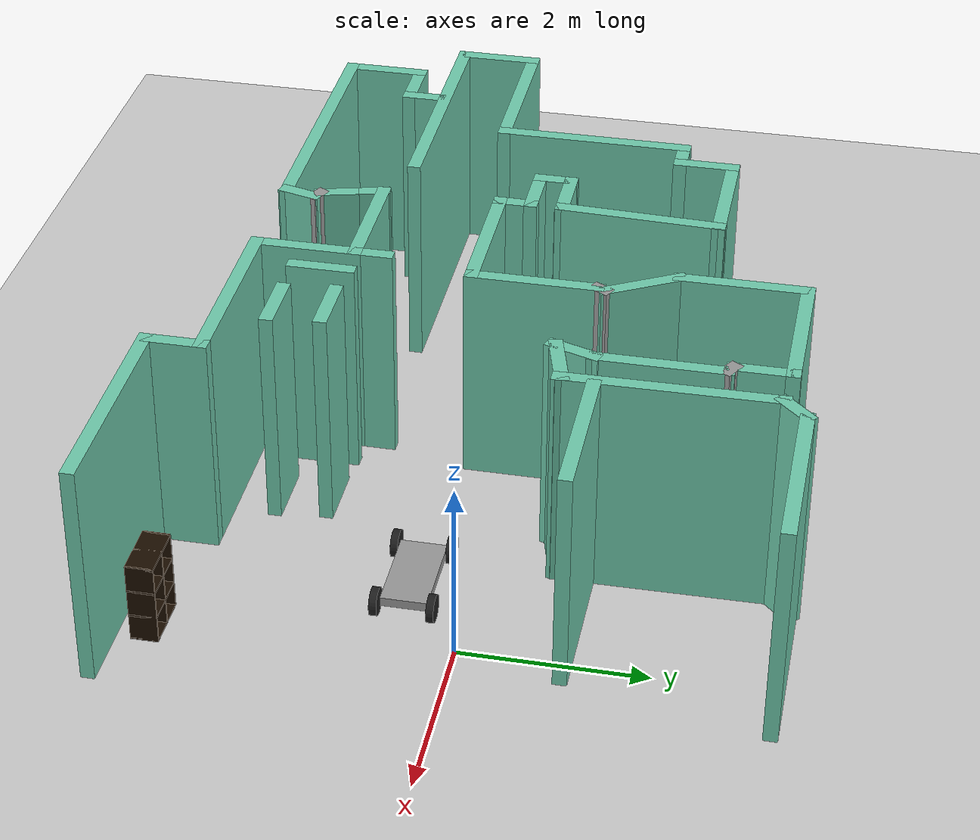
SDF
<sdf version="1.6">
 <world name="default">
  <model name="ground_plane">
   <static>1</static>
   <link name="link">
    <collision name="collision">
     <geometry><plane><normal>0 0 1</normal><size>100 100</size></plane></geometry>
     <surface>
      <contact><collide_bitmask>65535</collide_bitmask></contact>
      <friction><ode><mu>100</mu><mu2>50</mu2></ode></friction>
     </surface>
    </collision>
    <visual name="visual">
     <cast_shadows>0</cast_shadows>
     <geometry><plane><normal>0 0 1</normal><size>100 100</size></plane></geometry>
     <material>
      <script><uri>file://media/materials/scripts/gazebo.material</uri><name>Gazebo/Grey</name></script>
     </material>
    </visual>
   </link>
  </model>
  <model name="map_8">
   <pose>-0.03403 -0.65715 0 0 -0 0</pose>
   <link name="Wall_0">
    <collision name="Wall_0_Collision">
     <geometry><box><size>1.5 0.15 2.5</size></box></geometry>
     <pose>0 0 1.25 0 -0 0</pose>
    </collision>
    <visual name="Wall_0_Visual">
     <pose>0 0 1.25 0 -0 0</pose>
     <geometry><box><size>1.5 0.15 2.5</size></box></geometry>
     <material>
      <script><uri>file://media/materials/scripts/gazebo.material</uri><name>Gazebo/Grey</name></script>
      <ambient>0.435294 0.796078 0.67451 1</ambient>
     </material>
     <meta><layer>0</layer></meta>
    </visual>
    <pose>-5.35674 2.63095 0 0 -0 3.14159</pose>
   </link>
   <link name="Wall_1">
    <collision name="Wall_1_Collision">
     <geometry><box><size>0.75 0.15 2.5</size></box></geometry>
     <pose>0 0 1.25 0 -0 0</pose>
    </collision>
    <visual name="Wall_1_Visual">
     <pose>0 0 1.25 0 -0 0</pose>
     <geometry><box><size>0.75 0.15 2.5</size></box></geometry>
     <material>
      <script><uri>file://media/materials/scripts/gazebo.material</uri><name>Gazebo/Grey</name></script>
      <ambient>0.435294 0.796078 0.67451 1</ambient>
     </material>
     <meta><layer>0</layer></meta>
    </visual>
    <pose>-6.03174 2.33095 0 0 -0 -1.5708</pose>
   </link>
   <link name="Wall_100">
    <collision name="Wall_100_Collision">
     <geometry><box><size>0.5 0.15 2.5</size></box></geometry>
     <pose>0 0 1.25 0 -0 0</pose>
    </collision>
    <visual name="Wall_100_Visual">
     <pose>0 0 1.25 0 -0 0</pose>
     <geometry><box><size>0.5 0.15 2.5</size></box></geometry>
     <material>
      <script><uri>file://media/materials/scripts/gazebo.material</uri><name>Gazebo/Grey</name></script>
      <ambient>0.435294 0.796078 0.67451 1</ambient>
     </material>
     <meta><layer>0</layer></meta>
    </visual>
    <pose>-4.76082 0.357873 0 0 -0 1.5708</pose>
   </link>
   <link name="Wall_101">
    <collision name="Wall_101_Collision">
     <geometry><box><size>0.75 0.15 2.5</size></box></geometry>
     <pose>0 0 1.25 0 -0 0</pose>
    </collision>
    <visual name="Wall_101_Visual">
     <pose>0 0 1.25 0 -0 0</pose>
     <geometry><box><size>0.75 0.15 2.5</size></box></geometry>
     <material>
      <script><uri>file://media/materials/scripts/gazebo.material</uri><name>Gazebo/Grey</name></script>
      <ambient>0.435294 0.796078 0.67451 1</ambient>
     </material>
     <meta><layer>0</layer></meta>
    </visual>
    <pose>-5.06081 0.532873 0 0 -0 3.14159</pose>
   </link>
   <link name="Wall_102">
    <collision name="Wall_102_Collision">
     <geometry><box><size>0.5 0.15 2.5</size></box></geometry>
     <pose>0 0 1.25 0 -0 0</pose>
    </collision>
    <visual name="Wall_102_Visual">
     <pose>0 0 1.25 0 -0 0</pose>
     <geometry><box><size>0.5 0.15 2.5</size></box></geometry>
     <material>
      <script><uri>file://media/materials/scripts/gazebo.material</uri><name>Gazebo/Grey</name></script>
      <ambient>0.435294 0.796078 0.67451 1</ambient>
     </material>
     <meta><layer>0</layer></meta>
    </visual>
    <pose>-5.36081 0.707873 0 0 -0 1.5708</pose>
   </link>
   <link name="Wall_103">
    <collision name="Wall_103_Collision">
     <geometry><box><size>0.75 0.15 2.5</size></box></geometry>
     <pose>0 0 1.25 0 -0 0</pose>
    </collision>
    <visual name="Wall_103_Visual">
     <pose>0 0 1.25 0 -0 0</pose>
     <geometry><box><size>0.75 0.15 2.5</size></box></geometry>
     <material>
      <script><uri>file://media/materials/scripts/gazebo.material</uri><name>Gazebo/Grey</name></script>
      <ambient>0.435294 0.796078 0.67451 1</ambient>
     </material>
     <meta><layer>0</layer></meta>
    </visual>
    <pose>-5.06081 0.882873 0 0 -0 0</pose>
   </link>
   <link name="Wall_104">
    <collision name="Wall_104_Collision">
     <geometry><box><size>1.89986 0.15 2.5</size></box></geometry>
     <pose>0 0 1.25 0 -0 0</pose>
    </collision>
    <visual name="Wall_104_Visual">
     <pose>0 0 1.25 0 -0 0</pose>
     <geometry><box><size>1.89986 0.15 2.5</size></box></geometry>
     <material>
      <script><uri>file://media/materials/scripts/gazebo.material</uri><name>Gazebo/Grey</name></script>
      <ambient>0.435294 0.796078 0.67451 1</ambient>
     </material>
     <meta><layer>0</layer></meta>
    </visual>
    <pose>-4.72128 1.75691 0 0 -0 1.52559</pose>
   </link>
   <link name="Wall_11">
    <collision name="Wall_11_Collision">
     <geometry><box><size>0.75 0.15 2.5</size></box></geometry>
     <pose>0 0 1.25 0 -0 0</pose>
    </collision>
    <visual name="Wall_11_Visual">
     <pose>0 0 1.25 0 -0 0</pose>
     <geometry><box><size>0.75 0.15 2.5</size></box></geometry>
     <material>
      <script><uri>file://media/materials/scripts/gazebo.material</uri><name>Gazebo/Grey</name></script>
      <ambient>0.435294 0.796078 0.67451 1</ambient>
     </material>
     <meta><layer>0</layer></meta>
    </visual>
    <pose>-7.34107 -1.35055 0 0 -0 3.14159</pose>
   </link>
   <link name="Wall_113">
    <collision name="Wall_113_Collision">
     <geometry><box><size>1.75 0.15 2.5</size></box></geometry>
     <pose>0 0 1.25 0 -0 0</pose>
    </collision>
    <visual name="Wall_113_Visual">
     <pose>0 0 1.25 0 -0 0</pose>
     <geometry><box><size>1.75 0.15 2.5</size></box></geometry>
     <material>
      <script><uri>file://media/materials/scripts/gazebo.material</uri><name>Gazebo/Grey</name></script>
      <ambient>0.435294 0.796078 0.67451 1</ambient>
     </material>
     <meta><layer>0</layer></meta>
    </visual>
    <pose>-0.554925 1.77512 0 0 -0 3.14159</pose>
   </link>
   <link name="Wall_12">
    <collision name="Wall_12_Collision">
     <geometry><box><size>1 0.15 2.5</size></box></geometry>
     <pose>0 0 1.25 0 -0 0</pose>
    </collision>
    <visual name="Wall_12_Visual">
     <pose>0 0 1.25 0 -0 0</pose>
     <geometry><box><size>1 0.15 2.5</size></box></geometry>
     <material>
      <script><uri>file://media/materials/scripts/gazebo.material</uri><name>Gazebo/Grey</name></script>
      <ambient>0.435294 0.796078 0.67451 1</ambient>
     </material>
     <meta><layer>0</layer></meta>
    </visual>
    <pose>-7.64107 -1.77555 0 0 -0 -1.5708</pose>
   </link>
   <link name="Wall_125">
    <collision name="Wall_125_Collision">
     <geometry><box><size>0.75 0.15 2.5</size></box></geometry>
     <pose>0 0 1.25 0 -0 0</pose>
    </collision>
    <visual name="Wall_125_Visual">
     <pose>0 0 1.25 0 -0 0</pose>
     <geometry><box><size>0.75 0.15 2.5</size></box></geometry>
     <material>
      <script><uri>file://media/materials/scripts/gazebo.material</uri><name>Gazebo/Grey</name></script>
      <ambient>0.435294 0.796078 0.67451 1</ambient>
     </material>
     <meta><layer>0</layer></meta>
    </visual>
    <pose>-2.99321 -1.41621 0 0 -0 -1.5708</pose>
   </link>
   <link name="Wall_128">
    <collision name="Wall_128_Collision">
     <geometry><box><size>0.75 0.15 2.5</size></box></geometry>
     <pose>0 0 1.25 0 -0 0</pose>
    </collision>
    <visual name="Wall_128_Visual">
     <pose>0 0 1.25 0 -0 0</pose>
     <geometry><box><size>0.75 0.15 2.5</size></box></geometry>
     <material>
      <script><uri>file://media/materials/scripts/gazebo.material</uri><name>Gazebo/Grey</name></script>
      <ambient>0.435294 0.796078 0.67451 1</ambient>
     </material>
     <meta><layer>0</layer></meta>
    </visual>
    <pose>-2.27686 -1.16247 0 0 -0 0</pose>
   </link>
   <link name="Wall_13">
    <collision name="Wall_13_Collision">
     <geometry><box><size>3.25 0.15 2.5</size></box></geometry>
     <pose>0 0 1.25 0 -0 0</pose>
    </collision>
    <visual name="Wall_13_Visual">
     <pose>0 0 1.25 0 -0 0</pose>
     <geometry><box><size>3.25 0.15 2.5</size></box></geometry>
     <material>
      <script><uri>file://media/materials/scripts/gazebo.material</uri><name>Gazebo/Grey</name></script>
      <ambient>0.435294 0.796078 0.67451 1</ambient>
     </material>
     <meta><layer>0</layer></meta>
    </visual>
    <pose>-6.09107 -2.20056 0 0 -0 0</pose>
   </link>
   <link name="Wall_130">
    <collision name="Wall_130_Collision">
     <geometry><box><size>0.75 0.15 2.5</size></box></geometry>
     <pose>0 0 1.25 0 -0 0</pose>
    </collision>
    <visual name="Wall_130_Visual">
     <pose>0 0 1.25 0 -0 0</pose>
     <geometry><box><size>0.75 0.15 2.5</size></box></geometry>
     <material>
      <script><uri>file://media/materials/scripts/gazebo.material</uri><name>Gazebo/Grey</name></script>
      <ambient>0.435294 0.796078 0.67451 1</ambient>
     </material>
     <meta><layer>0</layer></meta>
    </visual>
    <pose>-2.20747 -1.7176 0 0 -0 0</pose>
   </link>
   <link name="Wall_14">
    <collision name="Wall_14_Collision">
     <geometry><box><size>0.5 0.15 2.5</size></box></geometry>
     <pose>0 0 1.25 0 -0 0</pose>
    </collision>
    <visual name="Wall_14_Visual">
     <pose>0 0 1.25 0 -0 0</pose>
     <geometry><box><size>0.5 0.15 2.5</size></box></geometry>
     <material>
      <script><uri>file://media/materials/scripts/gazebo.material</uri><name>Gazebo/Grey</name></script>
      <ambient>0.435294 0.796078 0.67451 1</ambient>
     </material>
     <meta><layer>0</layer></meta>
    </visual>
    <pose>-4.49577 -2.03152 0 0 -0 1.309</pose>
   </link>
   <link name="Wall_15">
    <collision name="Wall_15_Collision">
     <geometry><box><size>0.25 0.15 2.5</size></box></geometry>
     <pose>0 0 1.25 0 -0 0</pose>
    </collision>
    <visual name="Wall_15_Visual">
     <pose>0 0 1.25 0 -0 0</pose>
     <geometry><box><size>0.25 0.15 2.5</size></box></geometry>
     <material>
      <script><uri>file://media/materials/scripts/gazebo.material</uri><name>Gazebo/Grey</name></script>
      <ambient>1 1 1 1</ambient>
     </material>
     <meta><layer>0</layer></meta>
    </visual>
    <pose>-4.49378 -1.83748 0 0 -0 2.61799</pose>
   </link>
   <link name="Wall_16">
    <collision name="Wall_16_Collision">
     <geometry><box><size>0.5 0.15 2.5</size></box></geometry>
     <pose>0 0 1.25 0 -0 0</pose>
    </collision>
    <visual name="Wall_16_Visual">
     <pose>0 0 1.25 0 -0 0</pose>
     <geometry><box><size>0.5 0.15 2.5</size></box></geometry>
     <material>
      <script><uri>file://media/materials/scripts/gazebo.material</uri><name>Gazebo/Grey</name></script>
      <ambient>0.435294 0.796078 0.67451 1</ambient>
     </material>
     <meta><layer>0</layer></meta>
    </visual>
    <pose>-4.58237 -1.64344 0 0 -0 1.8326</pose>
   </link>
   <link name="Wall_17">
    <collision name="Wall_17_Collision">
     <geometry><box><size>0.5 0.15 2.5</size></box></geometry>
     <pose>0 0 1.25 0 -0 0</pose>
    </collision>
    <visual name="Wall_17_Visual">
     <pose>0 0 1.25 0 -0 0</pose>
     <geometry><box><size>0.5 0.15 2.5</size></box></geometry>
     <material>
      <script><uri>file://media/materials/scripts/gazebo.material</uri><name>Gazebo/Grey</name></script>
      <ambient>0.435294 0.796078 0.67451 1</ambient>
     </material>
     <meta><layer>0</layer></meta>
    </visual>
    <pose>-4.67296 -1.30537 0 0 -0 1.8326</pose>
   </link>
   <link name="Wall_2">
    <collision name="Wall_2_Collision">
     <geometry><box><size>0.5 0.15 2.5</size></box></geometry>
     <pose>0 0 1.25 0 -0 0</pose>
    </collision>
    <visual name="Wall_2_Visual">
     <pose>0 0 1.25 0 -0 0</pose>
     <geometry><box><size>0.5 0.15 2.5</size></box></geometry>
     <material>
      <script><uri>file://media/materials/scripts/gazebo.material</uri><name>Gazebo/Grey</name></script>
      <ambient>0.435294 0.796078 0.67451 1</ambient>
     </material>
     <meta><layer>0</layer></meta>
    </visual>
    <pose>-6.20674 2.03095 0 0 -0 3.14159</pose>
   </link>
   <link name="Wall_20">
    <collision name="Wall_20_Collision">
     <geometry><box><size>1.5 0.15 2.5</size></box></geometry>
     <pose>0 0 1.25 0 -0 0</pose>
    </collision>
    <visual name="Wall_20_Visual">
     <pose>0 0 1.25 0 -0 0</pose>
     <geometry><box><size>1.5 0.15 2.5</size></box></geometry>
     <material>
      <script><uri>file://media/materials/scripts/gazebo.material</uri><name>Gazebo/Grey</name></script>
      <ambient>0.435294 0.796078 0.67451 1</ambient>
     </material>
     <meta><layer>0</layer></meta>
    </visual>
    <pose>-4.04326 -1.13633 0 0 -0 0</pose>
   </link>
   <link name="Wall_21">
    <collision name="Wall_21_Collision">
     <geometry><box><size>0.5 0.15 2.5</size></box></geometry>
     <pose>0 0 1.25 0 -0 0</pose>
    </collision>
    <visual name="Wall_21_Visual">
     <pose>0 0 1.25 0 -0 0</pose>
     <geometry><box><size>0.5 0.15 2.5</size></box></geometry>
     <material>
      <script><uri>file://media/materials/scripts/gazebo.material</uri><name>Gazebo/Grey</name></script>
      <ambient>0.435294 0.796078 0.67451 1</ambient>
     </material>
     <meta><layer>0</layer></meta>
    </visual>
    <pose>-3.36825 -0.961333 0 0 -0 1.5708</pose>
   </link>
   <link name="Wall_25">
    <collision name="Wall_25_Collision">
     <geometry><box><size>1.25 0.15 2.5</size></box></geometry>
     <pose>0 0 1.25 0 -0 0</pose>
    </collision>
    <visual name="Wall_25_Visual">
     <pose>0 0 1.25 0 -0 0</pose>
     <geometry><box><size>1.25 0.15 2.5</size></box></geometry>
     <material>
      <script><uri>file://media/materials/scripts/gazebo.material</uri><name>Gazebo/Grey</name></script>
      <ambient>0.435294 0.796078 0.67451 1</ambient>
     </material>
     <meta><layer>0</layer></meta>
    </visual>
    <pose>-3.36825 -1.68633 0 0 -0 -1.5708</pose>
   </link>
   <link name="Wall_26">
    <collision name="Wall_26_Collision">
     <geometry><box><size>2.25 0.15 2.5</size></box></geometry>
     <pose>0 0 1.25 0 -0 0</pose>
    </collision>
    <visual name="Wall_26_Visual">
     <pose>0 0 1.25 0 -0 0</pose>
     <geometry><box><size>2.25 0.15 2.5</size></box></geometry>
     <material>
      <script><uri>file://media/materials/scripts/gazebo.material</uri><name>Gazebo/Grey</name></script>
      <ambient>0.435294 0.796078 0.67451 1</ambient>
     </material>
     <meta><layer>0</layer></meta>
    </visual>
    <pose>-2.31826 -2.23633 0 0 -0 0</pose>
   </link>
   <link name="Wall_27">
    <collision name="Wall_27_Collision">
     <geometry><box><size>0.75 0.15 2.5</size></box></geometry>
     <pose>0 0 1.25 0 -0 0</pose>
    </collision>
    <visual name="Wall_27_Visual">
     <pose>0 0 1.25 0 -0 0</pose>
     <geometry><box><size>0.75 0.15 2.5</size></box></geometry>
     <material>
      <script><uri>file://media/materials/scripts/gazebo.material</uri><name>Gazebo/Grey</name></script>
      <ambient>0.435294 0.796078 0.67451 1</ambient>
     </material>
     <meta><layer>0</layer></meta>
    </visual>
    <pose>-1.26825 -2.53633 0 0 -0 -1.5708</pose>
   </link>
   <link name="Wall_3">
    <collision name="Wall_3_Collision">
     <geometry><box><size>2.25 0.15 2.5</size></box></geometry>
     <pose>0 0 1.25 0 -0 0</pose>
    </collision>
    <visual name="Wall_3_Visual">
     <pose>0 0 1.25 0 -0 0</pose>
     <geometry><box><size>2.25 0.15 2.5</size></box></geometry>
     <material>
      <script><uri>file://media/materials/scripts/gazebo.material</uri><name>Gazebo/Grey</name></script>
      <ambient>0.435294 0.796078 0.67451 1</ambient>
     </material>
     <meta><layer>0</layer></meta>
    </visual>
    <pose>-6.38174 0.980951 0 0 -0 -1.5708</pose>
   </link>
   <link name="Wall_30">
    <collision name="Wall_30_Collision">
     <geometry><box><size>2.5 0.15 2.5</size></box></geometry>
     <pose>0 0 1.25 0 -0 0</pose>
    </collision>
    <visual name="Wall_30_Visual">
     <pose>0 0 1.25 0 -0 0</pose>
     <geometry><box><size>2.5 0.15 2.5</size></box></geometry>
     <material>
      <script><uri>file://media/materials/scripts/gazebo.material</uri><name>Gazebo/Grey</name></script>
      <ambient>0.435294 0.796078 0.67451 1</ambient>
     </material>
     <meta><layer>0</layer></meta>
    </visual>
    <pose>-0.093255 -2.83633 0 0 -0 0</pose>
   </link>
   <link name="Wall_4">
    <collision name="Wall_4_Collision">
     <geometry><box><size>2 0.15 2.5</size></box></geometry>
     <pose>0 0 1.25 0 -0 0</pose>
    </collision>
    <visual name="Wall_4_Visual">
     <pose>0 0 1.25 0 -0 0</pose>
     <geometry><box><size>2 0.15 2.5</size></box></geometry>
     <material>
      <script><uri>file://media/materials/scripts/gazebo.material</uri><name>Gazebo/Grey</name></script>
      <ambient>0.435294 0.796078 0.67451 1</ambient>
     </material>
     <meta><layer>0</layer></meta>
    </visual>
    <pose>-7.30674 -0.069049 0 0 -0 3.14159</pose>
   </link>
   <link name="Wall_5">
    <collision name="Wall_5_Collision">
     <geometry><box><size>1 0.15 2.5</size></box></geometry>
     <pose>0 0 1.25 0 -0 0</pose>
    </collision>
    <visual name="Wall_5_Visual">
     <pose>0 0 1.25 0 -0 0</pose>
     <geometry><box><size>1 0.15 2.5</size></box></geometry>
     <material>
      <script><uri>file://media/materials/scripts/gazebo.material</uri><name>Gazebo/Grey</name></script>
      <ambient>0.435294 0.796078 0.67451 1</ambient>
     </material>
     <meta><layer>0</layer></meta>
    </visual>
    <pose>-8.23174 -0.494049 0 0 -0 -1.5708</pose>
   </link>
   <link name="Wall_6">
    <collision name="Wall_6_Collision">
     <geometry><box><size>3 0.15 2.5</size></box></geometry>
     <pose>0 0 1.25 0 -0 0</pose>
    </collision>
    <visual name="Wall_6_Visual">
     <pose>0 0 1.25 0 -0 0</pose>
     <geometry><box><size>3 0.15 2.5</size></box></geometry>
     <material>
      <script><uri>file://media/materials/scripts/gazebo.material</uri><name>Gazebo/Grey</name></script>
      <ambient>0.435294 0.796078 0.67451 1</ambient>
     </material>
     <meta><layer>0</layer></meta>
    </visual>
    <pose>-6.80674 -0.919049 0 0 -0 0</pose>
   </link>
   <link name="Wall_8">
    <collision name="Wall_8_Collision">
     <geometry><box><size>0.5 0.15 2.5</size></box></geometry>
     <pose>0 0 1.25 0 -0 0</pose>
    </collision>
    <visual name="Wall_8_Visual">
     <pose>0 0 1.25 0 -0 0</pose>
     <geometry><box><size>0.5 0.15 2.5</size></box></geometry>
     <material>
      <script><uri>file://media/materials/scripts/gazebo.material</uri><name>Gazebo/Grey</name></script>
      <ambient>0.435294 0.796078 0.67451 1</ambient>
     </material>
     <meta><layer>0</layer></meta>
    </visual>
    <pose>-7.04107 -1.17555 0 0 -0 -1.5708</pose>
   </link>
   <link name="Wall_82">
    <collision name="Wall_82_Collision">
     <geometry><box><size>2 0.15 2.5</size></box></geometry>
     <pose>0 0 1.25 0 -0 0</pose>
    </collision>
    <visual name="Wall_82_Visual">
     <pose>0 0 1.25 0 -0 0</pose>
     <geometry><box><size>2 0.15 2.5</size></box></geometry>
     <material>
      <script><uri>file://media/materials/scripts/gazebo.material</uri><name>Gazebo/Grey</name></script>
      <ambient>0.435294 0.796078 0.67451 1</ambient>
     </material>
     <meta><layer>0</layer></meta>
    </visual>
    <pose>-0.272169 3.90527 0 0 -0 3.14159</pose>
   </link>
   <link name="Wall_83">
    <collision name="Wall_83_Collision">
     <geometry><box><size>0.5 0.15 2.5</size></box></geometry>
     <pose>0 0 1.25 0 -0 0</pose>
    </collision>
    <visual name="Wall_83_Visual">
     <pose>0 0 1.25 0 -0 0</pose>
     <geometry><box><size>0.5 0.15 2.5</size></box></geometry>
     <material>
      <script><uri>file://media/materials/scripts/gazebo.material</uri><name>Gazebo/Grey</name></script>
      <ambient>0.435294 0.796078 0.67451 1</ambient>
     </material>
     <meta><layer>0</layer></meta>
    </visual>
    <pose>-1.32091 3.78152 0 0 -0 -2.35619</pose>
   </link>
   <link name="Wall_84">
    <collision name="Wall_84_Collision">
     <geometry><box><size>2.3889 0.15 2.5</size></box></geometry>
     <pose>0 0 1.25 0 -0 0</pose>
    </collision>
    <visual name="Wall_84_Visual">
     <pose>0 0 1.25 0 -0 0</pose>
     <geometry><box><size>2.3889 0.15 2.5</size></box></geometry>
     <material>
      <script><uri>file://media/materials/scripts/gazebo.material</uri><name>Gazebo/Grey</name></script>
      <ambient>0.435294 0.796078 0.67451 1</ambient>
     </material>
     <meta><layer>0</layer></meta>
    </visual>
    <pose>-1.43309 2.53839 0 0 -0 -1.56046</pose>
   </link>
   <link name="Wall_85">
    <collision name="Wall_85_Collision">
     <geometry><box><size>0.75 0.15 2.5</size></box></geometry>
     <pose>0 0 1.25 0 -0 0</pose>
    </collision>
    <visual name="Wall_85_Visual">
     <pose>0 0 1.25 0 -0 0</pose>
     <geometry><box><size>0.75 0.15 2.5</size></box></geometry>
     <material>
      <script><uri>file://media/materials/scripts/gazebo.material</uri><name>Gazebo/Grey</name></script>
      <ambient>0.435294 0.796078 0.67451 1</ambient>
     </material>
     <meta><layer>0</layer></meta>
    </visual>
    <pose>-1.7113 1.36448 0 0 -0 -2.87979</pose>
   </link>
   <link name="Wall_86">
    <collision name="Wall_86_Collision">
     <geometry><box><size>0.617262 0.15 2.5</size></box></geometry>
     <pose>0 0 1.25 0 -0 0</pose>
    </collision>
    <visual name="Wall_86_Visual">
     <pose>0 0 1.25 0 -0 0</pose>
     <geometry><box><size>0.617262 0.15 2.5</size></box></geometry>
     <material>
      <script><uri>file://media/materials/scripts/gazebo.material</uri><name>Gazebo/Grey</name></script>
      <ambient>0.435294 0.796078 0.67451 1</ambient>
     </material>
     <meta><layer>0</layer></meta>
    </visual>
    <pose>-1.92515 1.48465 0 0 -0 1.23976</pose>
   </link>
   <link name="Wall_87">
    <collision name="Wall_87_Collision">
     <geometry><box><size>1.5 0.15 2.5</size></box></geometry>
     <pose>0 0 1.25 0 -0 0</pose>
    </collision>
    <visual name="Wall_87_Visual">
     <pose>0 0 1.25 0 -0 0</pose>
     <geometry><box><size>1.5 0.15 2.5</size></box></geometry>
     <material>
      <script><uri>file://media/materials/scripts/gazebo.material</uri><name>Gazebo/Grey</name></script>
      <ambient>0.435294 0.796078 0.67451 1</ambient>
     </material>
     <meta><layer>0</layer></meta>
    </visual>
    <pose>-1.84921 2.3806 0 0 -0 1.5708</pose>
   </link>
   <link name="Wall_88">
    <collision name="Wall_88_Collision">
     <geometry><box><size>0.25 0.15 2.5</size></box></geometry>
     <pose>0 0 1.25 0 -0 0</pose>
    </collision>
    <visual name="Wall_88_Visual">
     <pose>0 0 1.25 0 -0 0</pose>
     <geometry><box><size>0.25 0.15 2.5</size></box></geometry>
     <material>
      <script><uri>file://media/materials/scripts/gazebo.material</uri><name>Gazebo/Grey</name></script>
      <ambient>1 1 1 1</ambient>
     </material>
     <meta><layer>0</layer></meta>
    </visual>
    <pose>-1.89251 3.0806 0 0 -0 2.61799</pose>
   </link>
   <link name="Wall_89">
    <collision name="Wall_89_Collision">
     <geometry><box><size>0.75 0.15 2.5</size></box></geometry>
     <pose>0 0 1.25 0 -0 0</pose>
    </collision>
    <visual name="Wall_89_Visual">
     <pose>0 0 1.25 0 -0 0</pose>
     <geometry><box><size>0.75 0.15 2.5</size></box></geometry>
     <material>
      <script><uri>file://media/materials/scripts/gazebo.material</uri><name>Gazebo/Grey</name></script>
      <ambient>0.435294 0.796078 0.67451 1</ambient>
     </material>
     <meta><layer>0</layer></meta>
    </visual>
    <pose>-1.93582 3.4056 0 0 -0 1.5708</pose>
   </link>
   <link name="Wall_92">
    <collision name="Wall_92_Collision">
     <geometry><box><size>1.75 0.15 2.5</size></box></geometry>
     <pose>0 0 1.25 0 -0 0</pose>
    </collision>
    <visual name="Wall_92_Visual">
     <pose>0 0 1.25 0 -0 0</pose>
     <geometry><box><size>1.75 0.15 2.5</size></box></geometry>
     <material>
      <script><uri>file://media/materials/scripts/gazebo.material</uri><name>Gazebo/Grey</name></script>
      <ambient>0.435294 0.796078 0.67451 1</ambient>
     </material>
     <meta><layer>0</layer></meta>
    </visual>
    <pose>-2.73582 3.7056 0 0 -0 3.14159</pose>
   </link>
   <link name="Wall_93">
    <collision name="Wall_93_Collision">
     <geometry><box><size>1.5 0.15 2.5</size></box></geometry>
     <pose>0 0 1.25 0 -0 0</pose>
    </collision>
    <visual name="Wall_93_Visual">
     <pose>0 0 1.25 0 -0 0</pose>
     <geometry><box><size>1.5 0.15 2.5</size></box></geometry>
     <material>
      <script><uri>file://media/materials/scripts/gazebo.material</uri><name>Gazebo/Grey</name></script>
      <ambient>0.435294 0.796078 0.67451 1</ambient>
     </material>
     <meta><layer>0</layer></meta>
    </visual>
    <pose>-3.53581 3.0306 0 0 -0 -1.5708</pose>
   </link>
   <link name="Wall_96">
    <collision name="Wall_96_Collision">
     <geometry><box><size>1 0.15 2.5</size></box></geometry>
     <pose>0 0 1.25 0 -0 0</pose>
    </collision>
    <visual name="Wall_96_Visual">
     <pose>0 0 1.25 0 -0 0</pose>
     <geometry><box><size>1 0.15 2.5</size></box></geometry>
     <material>
      <script><uri>file://media/materials/scripts/gazebo.material</uri><name>Gazebo/Grey</name></script>
      <ambient>0.435294 0.796078 0.67451 1</ambient>
     </material>
     <meta><layer>0</layer></meta>
    </visual>
    <pose>-3.32332 1.98754 0 0 -0 -1.0472</pose>
   </link>
   <link name="Wall_97">
    <collision name="Wall_97_Collision">
     <geometry><box><size>0.25 0.15 2.5</size></box></geometry>
     <pose>0 0 1.25 0 -0 0</pose>
    </collision>
    <visual name="Wall_97_Visual">
     <pose>0 0 1.25 0 -0 0</pose>
     <geometry><box><size>0.25 0.15 2.5</size></box></geometry>
     <material>
      <script><uri>file://media/materials/scripts/gazebo.material</uri><name>Gazebo/Grey</name></script>
      <ambient>1 1 1 1</ambient>
     </material>
     <meta><layer>0</layer></meta>
    </visual>
    <pose>-3.13582 1.57617 0 0 -0 -2.0944</pose>
   </link>
   <link name="Wall_98">
    <collision name="Wall_98_Collision">
     <geometry><box><size>1.5 0.15 2.5</size></box></geometry>
     <pose>0 0 1.25 0 -0 0</pose>
    </collision>
    <visual name="Wall_98_Visual">
     <pose>0 0 1.25 0 -0 0</pose>
     <geometry><box><size>1.5 0.15 2.5</size></box></geometry>
     <material>
      <script><uri>file://media/materials/scripts/gazebo.material</uri><name>Gazebo/Grey</name></script>
      <ambient>0.435294 0.796078 0.67451 1</ambient>
     </material>
     <meta><layer>0</layer></meta>
    </visual>
    <pose>-3.16081 0.857873 0 0 -0 -1.5708</pose>
   </link>
   <link name="Wall_99">
    <collision name="Wall_99_Collision">
     <geometry><box><size>1.75 0.15 2.5</size></box></geometry>
     <pose>0 0 1.25 0 -0 0</pose>
    </collision>
    <visual name="Wall_99_Visual">
     <pose>0 0 1.25 0 -0 0</pose>
     <geometry><box><size>1.75 0.15 2.5</size></box></geometry>
     <material>
      <script><uri>file://media/materials/scripts/gazebo.material</uri><name>Gazebo/Grey</name></script>
      <ambient>0.435294 0.796078 0.67451 1</ambient>
     </material>
     <meta><layer>0</layer></meta>
    </visual>
    <pose>-3.96082 0.182873 0 0 -0 3.14159</pose>
   </link>
   <static>1</static>
  </model>
  <model name="6_Cube_StorageE">
   <link name="Wall_0">
    <pose>0 0 0.01 0 -0 0</pose>
    <inertial>
     <mass>1.6201</mass>
     <inertia><ixx>0.0119</ixx><iyy>0.0631</iyy><izz>0.0513</izz><ixy>0</ixy><ixz>0</ixz><iyz>0</iyz></inertia>
    </inertial>
    <collision name="Wall_0_Collision"><geometry><box><size>0.616 0.296 0.02</size></box></geometry></collision>
    <visual name="Wall_0_Visual">
     <geometry><box><size>0.616 0.296 0.02</size></box></geometry>
     <material>
      <script><uri>file://media/materials/scripts/gazebo.material</uri><name>Gazebo/Grey</name></script>
      <ambient>0.105882 0.0509804 0 1</ambient>
     </material>
    </visual>
   </link>
   <joint name="0_2" type="fixed">
    <pose>-0.308 0 0 0 -0 0</pose>
    <parent>Wall_2</parent>
    <child>Wall_0</child>
    <axis>
     <xyz>1 0 0</xyz>
     <use_parent_model_frame>0</use_parent_model_frame>
     <limit><lower>-1e+16</lower><upper>1e+16</upper></limit>
    </axis>
   </joint>
   <joint name="0_12" type="fixed">
    <parent>Wall_12</parent>
    <child>Wall_0</child>
    <axis>
     <xyz>0 0 1</xyz>
     <use_parent_model_frame>0</use_parent_model_frame>
     <limit><lower>-1e+16</lower><upper>1e+16</upper></limit>
    </axis>
   </joint>
   <joint name="0_4" type="fixed">
    <pose>0.308 0 0 0 -0 0</pose>
    <parent>Wall_4</parent>
    <child>Wall_0</child>
    <axis>
     <xyz>1 0 0</xyz>
     <use_parent_model_frame>0</use_parent_model_frame>
     <limit><lower>-1e+16</lower><upper>1e+16</upper></limit>
    </axis>
   </joint>
   <link name="Wall_10">
    <pose>0 0 0.61 0 -0 0</pose>
    <inertial>
     <mass>1.6201</mass>
     <inertia><ixx>0.0119</ixx><iyy>0.0631</iyy><izz>0.0513</izz><ixy>0</ixy><ixz>0</ixz><iyz>0</iyz></inertia>
    </inertial>
    <collision name="Wall_10_Collision"><geometry><box><size>0.616 0.296 0.02</size></box></geometry></collision>
    <visual name="Wall_10_Visual">
     <geometry><box><size>0.616 0.296 0.02</size></box></geometry>
     <material>
      <script><uri>file://media/materials/scripts/gazebo.material</uri><name>Gazebo/Grey</name></script>
      <ambient>0.105882 0.0509804 0 1</ambient>
     </material>
    </visual>
   </link>
   <joint name="10_2" type="fixed">
    <pose>-0.308 0 0 0 -0 0</pose>
    <parent>Wall_2</parent>
    <child>Wall_10</child>
    <axis>
     <xyz>1 0 0</xyz>
     <use_parent_model_frame>0</use_parent_model_frame>
     <limit><lower>-1e+16</lower><upper>1e+16</upper></limit>
    </axis>
   </joint>
   <joint name="10_12" type="fixed">
    <parent>Wall_12</parent>
    <child>Wall_10</child>
    <axis>
     <xyz>0 0 1</xyz>
     <use_parent_model_frame>0</use_parent_model_frame>
     <limit><lower>-1e+16</lower><upper>1e+16</upper></limit>
    </axis>
   </joint>
   <joint name="10_4" type="fixed">
    <pose>0.308 0 0 0 -0 0</pose>
    <parent>Wall_4</parent>
    <child>Wall_10</child>
    <axis>
     <xyz>1 0 0</xyz>
     <use_parent_model_frame>0</use_parent_model_frame>
     <limit><lower>-1e+16</lower><upper>1e+16</upper></limit>
    </axis>
   </joint>
   <link name="Wall_12">
    <pose>0 0 0.4575 0 -0 0</pose>
    <inertial>
     <mass>2.4065</mass>
     <inertia><ixx>0.0177</ixx><iyy>0.1855</iyy><izz>0.168</izz><ixy>0</ixy><ixz>0</ixz><iyz>0</iyz></inertia>
    </inertial>
    <collision name="Wall_12_Collision"><geometry><box><size>0.02 0.296 0.915</size></box></geometry></collision>
    <visual name="Wall_12_Visual">
     <geometry><box><size>0.02 0.296 0.915</size></box></geometry>
     <material>
      <script><uri>file://media/materials/scripts/gazebo.material</uri><name>Gazebo/Grey</name></script>
      <ambient>0.105882 0.0509804 0 1</ambient>
     </material>
    </visual>
   </link>
   <link name="Wall_2">
    <pose>-0.298 0 0.4575 0 -0 0</pose>
    <inertial>
     <mass>2.4065</mass>
     <inertia><ixx>0.0177</ixx><iyy>0.1855</iyy><izz>0.168</izz><ixy>0</ixy><ixz>0</ixz><iyz>0</iyz></inertia>
    </inertial>
    <collision name="Wall_2_Collision"><geometry><box><size>0.02 0.296 0.915</size></box></geometry></collision>
    <visual name="Wall_2_Visual">
     <geometry><box><size>0.02 0.296 0.915</size></box></geometry>
     <material>
      <script><uri>file://media/materials/scripts/gazebo.material</uri><name>Gazebo/Grey</name></script>
      <ambient>0.105882 0.0509804 0 1</ambient>
     </material>
    </visual>
   </link>
   <link name="Wall_4">
    <pose>0.298 0 0.4575 0 -0 0</pose>
    <inertial>
     <mass>2.4065</mass>
     <inertia><ixx>0.0177</ixx><iyy>0.1855</iyy><izz>0.168</izz><ixy>0</ixy><ixz>0</ixz><iyz>0</iyz></inertia>
    </inertial>
    <collision name="Wall_4_Collision"><geometry><box><size>0.02 0.296 0.915</size></box></geometry></collision>
    <visual name="Wall_4_Visual">
     <geometry><box><size>0.02 0.296 0.915</size></box></geometry>
     <material>
      <script><uri>file://media/materials/scripts/gazebo.material</uri><name>Gazebo/Grey</name></script>
      <ambient>0.105882 0.0509804 0 1</ambient>
     </material>
    </visual>
   </link>
   <link name="Wall_6">
    <pose>0 0 0.905 0 -0 0</pose>
    <inertial>
     <mass>1.6201</mass>
     <inertia><ixx>0.0119</ixx><iyy>0.0631</iyy><izz>0.0513</izz><ixy>0</ixy><ixz>0</ixz><iyz>0</iyz></inertia>
    </inertial>
    <collision name="Wall_6_Collision"><geometry><box><size>0.616 0.296 0.02</size></box></geometry></collision>
    <visual name="Wall_6_Visual">
     <geometry><box><size>0.616 0.296 0.02</size></box></geometry>
     <material>
      <script><uri>file://media/materials/scripts/gazebo.material</uri><name>Gazebo/Grey</name></script>
      <ambient>0.105882 0.0509804 0 1</ambient>
     </material>
    </visual>
   </link>
   <joint name="6_2" type="fixed">
    <pose>-0.308 0 0 0 -0 0</pose>
    <parent>Wall_2</parent>
    <child>Wall_6</child>
    <axis>
     <xyz>2 0 0</xyz>
     <use_parent_model_frame>0</use_parent_model_frame>
     <limit><lower>-1e+16</lower><upper>1e+16</upper></limit>
    </axis>
   </joint>
   <joint name="6_12" type="fixed">
    <parent>Wall_12</parent>
    <child>Wall_6</child>
    <axis>
     <xyz>0 0 1</xyz>
     <use_parent_model_frame>0</use_parent_model_frame>
     <limit><lower>-1e+16</lower><upper>1e+16</upper></limit>
    </axis>
   </joint>
   <joint name="6_4" type="fixed">
    <pose>0.308 0 0 0 -0 0</pose>
    <parent>Wall_4</parent>
    <child>Wall_6</child>
    <axis>
     <xyz>1 0 0</xyz>
     <use_parent_model_frame>0</use_parent_model_frame>
     <limit><lower>-1e+16</lower><upper>1e+16</upper></limit>
    </axis>
   </joint>
   <link name="Wall_8">
    <pose>0 0 0.305 0 -0 0</pose>
    <inertial>
     <mass>1.6201</mass>
     <inertia><ixx>0.0119</ixx><iyy>0.0631</iyy><izz>0.0513</izz><ixy>0</ixy><ixz>0</ixz><iyz>0</iyz></inertia>
    </inertial>
    <collision name="Wall_8_Collision"><geometry><box><size>0.616 0.296 0.02</size></box></geometry></collision>
    <visual name="Wall_8_Visual">
     <geometry><box><size>0.616 0.296 0.02</size></box></geometry>
     <material>
      <script><uri>file://media/materials/scripts/gazebo.material</uri><name>Gazebo/Grey</name></script>
      <ambient>0.105882 0.0509804 0 1</ambient>
     </material>
    </visual>
   </link>
   <joint name="8_2" type="fixed">
    <pose>-0.308 0 0 0 -0 0</pose>
    <parent>Wall_2</parent>
    <child>Wall_8</child>
    <axis>
     <xyz>1 0 0</xyz>
     <use_parent_model_frame>0</use_parent_model_frame>
     <limit><lower>-1e+16</lower><upper>1e+16</upper></limit>
    </axis>
   </joint>
   <joint name="8_12" type="fixed">
    <parent>Wall_12</parent>
    <child>Wall_8</child>
    <axis>
     <xyz>0 0 1</xyz>
     <use_parent_model_frame>0</use_parent_model_frame>
     <limit><lower>-1e+16</lower><upper>1e+16</upper></limit>
    </axis>
   </joint>
   <joint name="8_4" type="fixed">
    <pose>0.308 0 0 0 -0 0</pose>
    <parent>Wall_4</parent>
    <child>Wall_8</child>
    <axis>
     <xyz>1 0 0</xyz>
     <use_parent_model_frame>0</use_parent_model_frame>
     <limit><lower>-1e+16</lower><upper>1e+16</upper></limit>
    </axis>
   </joint>
   <static>1</static>
   <pose>0.141558 -3.11752 0 0 -0 0</pose>
  </model>
  <model name="cart_rigid_suspension">
   <link name="chassis">
    <pose>0 0 0.15 0 -0 0</pose>
    <inertial>
     <pose>0.1 0 0 0 -0 0</pose>
     <mass>10</mass>
     <inertia>
      <ixx>0.216667</ixx>
      <iyy>0.841667</iyy>
      <izz>1.04167</izz>
      <ixy>0</ixy>
      <ixz>0</ixz>
      <iyz>0</iyz>
     </inertia>
    </inertial>
    <collision name="collision"><geometry><box><size>1 0.5 0.1</size></box></geometry></collision>
    <visual name="visual">
     <geometry><box><size>1 0.5 0.1</size></box></geometry>
     <material>
      <script><uri>file://media/materials/scripts/gazebo.material</uri><name>Gazebo/Grey</name></script>
     </material>
    </visual>
   </link>
   <link name="wheel_front_left">
    <pose>0.5 0.298 0.15 -1.5708 0 0</pose>
    <inertial>
     <mass>0.5</mass>
     <inertia>
      <ixx>0.00307917</ixx>
      <iyy>0.00307917</iyy>
      <izz>0.005625</izz>
      <ixy>0</ixy>
      <ixz>0</ixz>
      <iyz>0</iyz>
     </inertia>
    </inertial>
    <collision name="collision">
     <geometry><cylinder><radius>0.15</radius><length>0.08</length></cylinder></geometry>
    </collision>
    <visual name="visual">
     <geometry><cylinder><radius>0.15</radius><length>0.08</length></cylinder></geometry>
     <material>
      <script><uri>file://media/materials/scripts/gazebo.material</uri><name>Gazebo/Black</name></script>
     </material>
    </visual>
   </link>
   <joint name="wheel_front_left_spin" type="revolute">
    <parent>chassis</parent>
    <child>wheel_front_left</child>
    <axis>
     <xyz>0 0 1</xyz>
     <use_parent_model_frame>0</use_parent_model_frame>
     <limit><lower>-1e+16</lower><upper>1e+16</upper></limit>
     <dynamics><spring_reference>0</spring_reference><spring_stiffness>0</spring_stiffness></dynamics>
    </axis>
   </joint>
   <link name="wheel_front_right">
    <pose>0.5 -0.298 0.15 -1.5708 0 0</pose>
    <inertial>
     <mass>0.5</mass>
     <inertia>
      <ixx>0.00307917</ixx>
      <iyy>0.00307917</iyy>
      <izz>0.005625</izz>
      <ixy>0</ixy>
      <ixz>0</ixz>
      <iyz>0</iyz>
     </inertia>
    </inertial>
    <collision name="collision">
     <geometry><cylinder><radius>0.15</radius><length>0.08</length></cylinder></geometry>
    </collision>
    <visual name="visual">
     <geometry><cylinder><radius>0.15</radius><length>0.08</length></cylinder></geometry>
     <material>
      <script><uri>file://media/materials/scripts/gazebo.material</uri><name>Gazebo/Black</name></script>
     </material>
    </visual>
   </link>
   <joint name="wheel_front_right_spin" type="revolute">
    <parent>chassis</parent>
    <child>wheel_front_right</child>
    <axis>
     <xyz>0 0 1</xyz>
     <use_parent_model_frame>0</use_parent_model_frame>
     <limit><lower>-1e+16</lower><upper>1e+16</upper></limit>
     <dynamics><spring_reference>0</spring_reference><spring_stiffness>0</spring_stiffness></dynamics>
    </axis>
   </joint>
   <link name="wheel_rear_left">
    <pose>-0.5 0.298 0.15 -1.5708 0 0</pose>
    <inertial>
     <mass>0.5</mass>
     <inertia>
      <ixx>0.00307917</ixx>
      <iyy>0.00307917</iyy>
      <izz>0.005625</izz>
      <ixy>0</ixy>
      <ixz>0</ixz>
      <iyz>0</iyz>
     </inertia>
    </inertial>
    <collision name="collision">
     <geometry><cylinder><radius>0.15</radius><length>0.08</length></cylinder></geometry>
    </collision>
    <visual name="visual">
     <geometry><cylinder><radius>0.15</radius><length>0.08</length></cylinder></geometry>
     <material>
      <script><uri>file://media/materials/scripts/gazebo.material</uri><name>Gazebo/Black</name></script>
     </material>
    </visual>
   </link>
   <joint name="wheel_rear_left_spin" type="revolute">
    <parent>chassis</parent>
    <child>wheel_rear_left</child>
    <axis>
     <xyz>0 0 1</xyz>
     <use_parent_model_frame>0</use_parent_model_frame>
     <limit><lower>-1e+16</lower><upper>1e+16</upper></limit>
     <dynamics><spring_reference>0</spring_reference><spring_stiffness>0</spring_stiffness></dynamics>
    </axis>
   </joint>
   <link name="wheel_rear_right">
    <pose>-0.5 -0.298 0.15 -1.5708 0 0</pose>
    <inertial>
     <mass>0.5</mass>
     <inertia>
      <ixx>0.00307917</ixx>
      <iyy>0.00307917</iyy>
      <izz>0.005625</izz>
      <ixy>0</ixy>
      <ixz>0</ixz>
      <iyz>0</iyz>
     </inertia>
    </inertial>
    <collision name="collision">
     <geometry><cylinder><radius>0.15</radius><length>0.08</length></cylinder></geometry>
    </collision>
    <visual name="visual">
     <geometry><cylinder><radius>0.15</radius><length>0.08</length></cylinder></geometry>
     <material>
      <script><uri>file://media/materials/scripts/gazebo.material</uri><name>Gazebo/Black</name></script>
     </material>
    </visual>
   </link>
   <joint name="wheel_rear_right_spin" type="revolute">
    <parent>chassis</parent>
    <child>wheel_rear_right</child>
    <axis>
     <xyz>0 0 1</xyz>
     <use_parent_model_frame>0</use_parent_model_frame>
     <limit><lower>-1e+16</lower><upper>1e+16</upper></limit>
     <dynamics><spring_reference>0</spring_reference><spring_stiffness>0</spring_stiffness></dynamics>
    </axis>
   </joint>
   <pose>-0.960613 -0.628455 0 0 -0 0.001468</pose>
  </model>
 </world>
</sdf>
